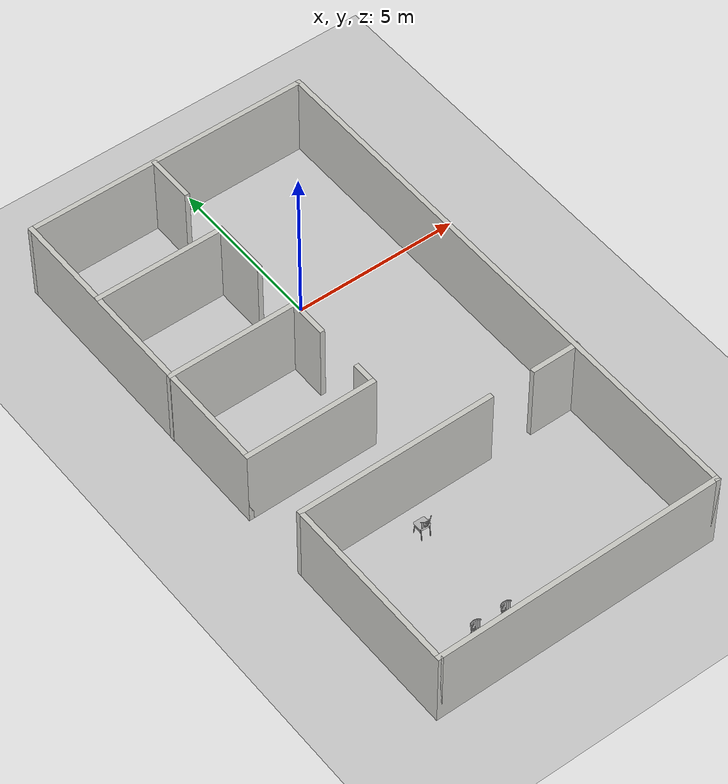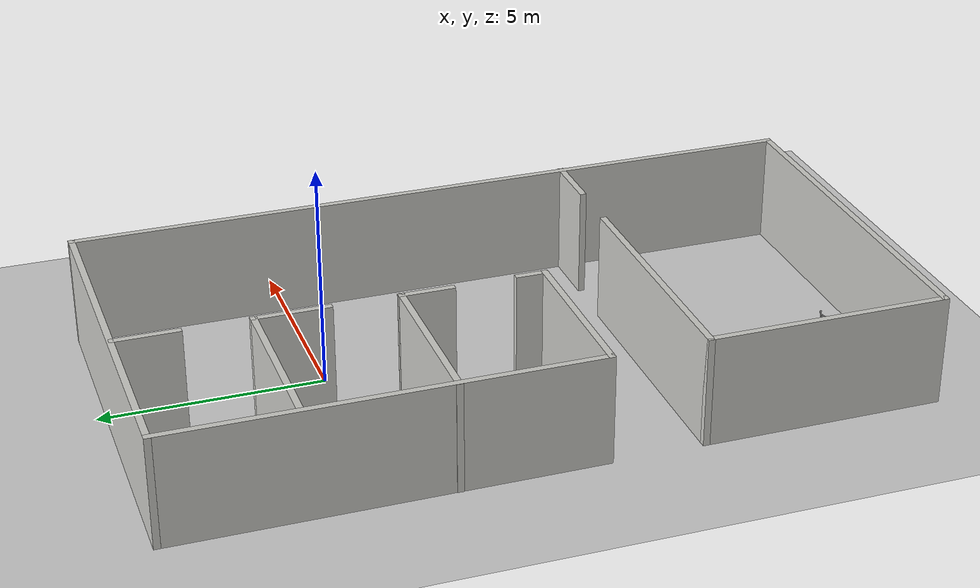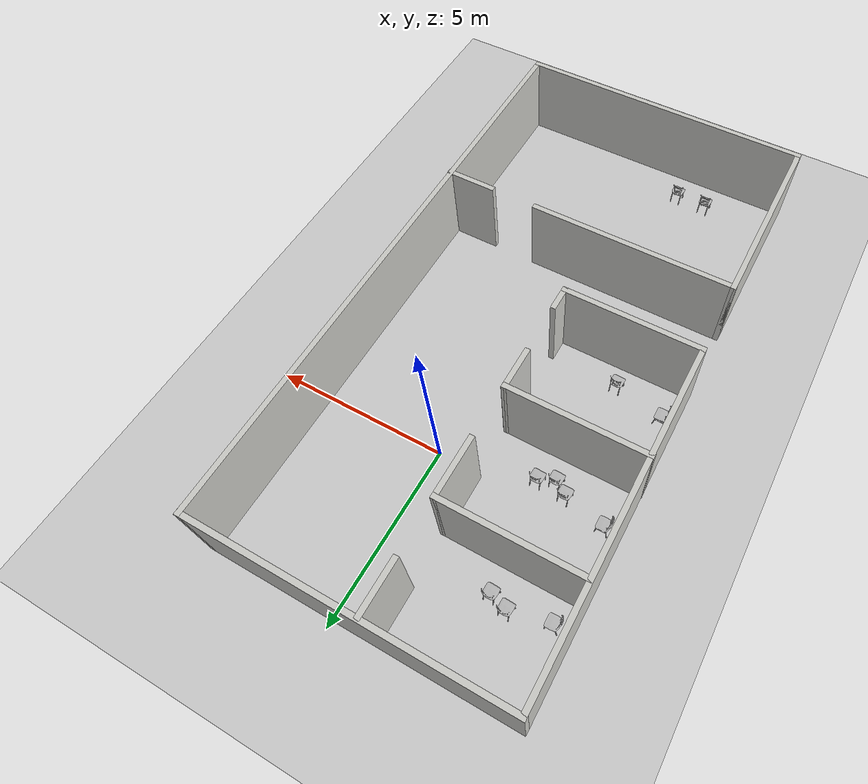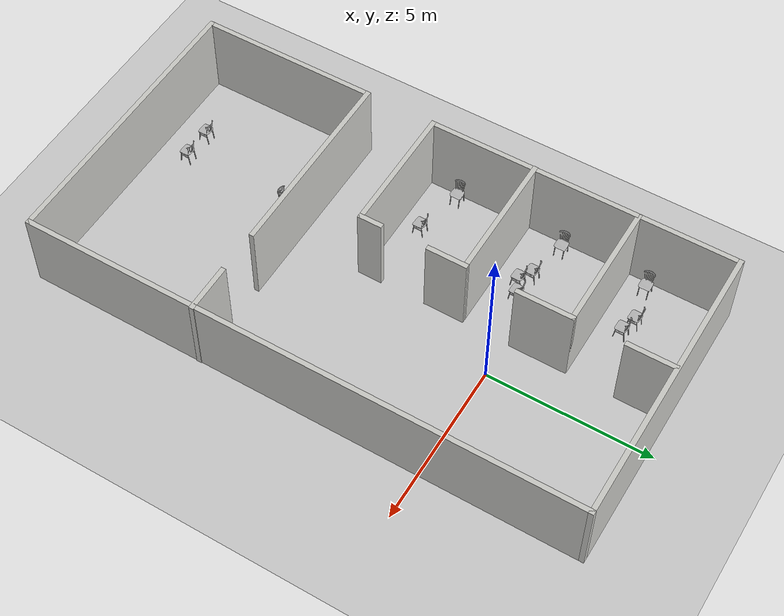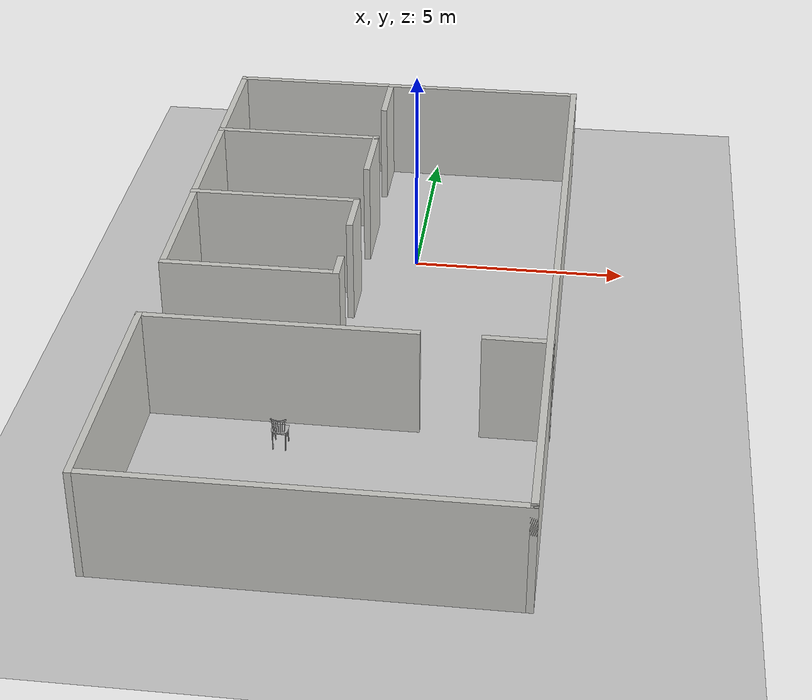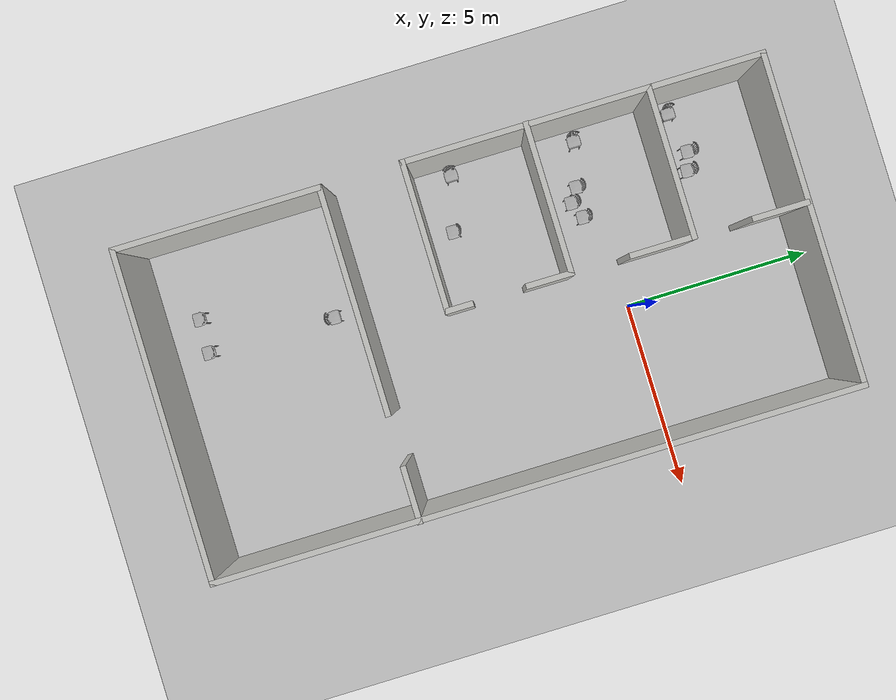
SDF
<sdf version="1.6">
 <world name="ingc_lab">
  <plugin name="ActorPosesPlugin" filename="libActorPosesPlugin.so"/>
  <light name="sun" type="directional">
   <pose>0 0 10 0 -0 0</pose>
   <diffuse>0.8 0.8 0.8 1</diffuse>
   <specular>0.2 0.2 0.2 1</specular>
   <attenuation>
    <range>1000</range>
    <constant>0.9</constant>
    <linear>0.01</linear>
    <quadratic>0.001</quadratic>
   </attenuation>
   <direction>-0.5 0.1 -0.9</direction>
  </light>
  <model name="ground_plane">
   <static>1</static>
   <link name="link">
    <collision name="collision">
     <geometry><plane><normal>0 0 1</normal><size>100 100</size></plane></geometry>
     <surface>
      <contact><collide_bitmask>65535</collide_bitmask></contact>
      <friction><ode><mu>100</mu><mu2>50</mu2></ode></friction>
     </surface>
    </collision>
    <visual name="visual">
     <cast_shadows>0</cast_shadows>
     <geometry><plane><normal>0 0 1</normal><size>100 100</size></plane></geometry>
     <material>
      <script><uri>file://media/materials/scripts/gazebo.material</uri><name>Gazebo/Grey</name></script>
     </material>
    </visual>
   </link>
  </model>
  <gravity>0 0 -9.8</gravity>
  <magnetic_field>6e-06 2.3e-05 -4.2e-05</magnetic_field>
  <atmosphere type="adiabatic"/>
  <physics name="default_physics" default="0" type="ode">
   <max_step_size>0.001</max_step_size>
   <real_time_factor>1</real_time_factor>
   <real_time_update_rate>1000</real_time_update_rate>
  </physics>
  <scene><ambient>0.4 0.4 0.4 1</ambient><background>0.7 0.7 0.7 1</background><shadows>1</shadows></scene>
  <audio><device>default</device></audio>
  <spherical_coordinates>
   <surface_model>EARTH_WGS84</surface_model>
   <latitude_deg>0</latitude_deg>
   <longitude_deg>0</longitude_deg>
   <elevation>0</elevation>
   <heading_deg>0</heading_deg>
  </spherical_coordinates>
  <model name="ignc_model_own-size">
   <pose>-0.772286 -3.71003 0 0 -0 0</pose>
   <link name="Wall_31">
    <collision name="Wall_31_Collision">
     <geometry><box><size>5.5 0.15 2.5</size></box></geometry>
     <pose>0 0 1.25 0 -0 0</pose>
    </collision>
    <visual name="Wall_31_Visual">
     <pose>0 0 1.25 0 -0 0</pose>
     <geometry><box><size>5.5 0.15 2.5</size></box></geometry>
     <material>
      <script><uri>file://media/materials/scripts/gazebo.material</uri><name>Gazebo/CeilingTiled</name></script>
      <ambient>1 1 1 1</ambient>
     </material>
     <meta><layer>0</layer></meta>
    </visual>
    <pose>-4.30343 -5.75 0 0 -0 -1.5708</pose>
   </link>
   <link name="Wall_32">
    <collision name="Wall_32_Collision">
     <geometry><box><size>8.75 0.15 2.5</size></box></geometry>
     <pose>0 0 1.25 0 -0 0</pose>
    </collision>
    <visual name="Wall_32_Visual">
     <pose>0 0 1.25 0 -0 0</pose>
     <geometry><box><size>8.75 0.15 2.5</size></box></geometry>
     <material>
      <script><uri>file://media/materials/scripts/gazebo.material</uri><name>Gazebo/CeilingTiled</name></script>
      <ambient>1 1 1 1</ambient>
     </material>
     <meta><layer>0</layer></meta>
    </visual>
    <pose>-0.00343 -8.425 0 0 -0 0</pose>
   </link>
   <link name="Wall_33">
    <collision name="Wall_33_Collision">
     <geometry><box><size>17 0.15 2.5</size></box></geometry>
     <pose>0 0 1.25 0 -0 0</pose>
    </collision>
    <visual name="Wall_33_Visual">
     <pose>0 0 1.25 0 -0 0</pose>
     <geometry><box><size>17 0.15 2.5</size></box></geometry>
     <material>
      <script><uri>file://media/materials/scripts/gazebo.material</uri><name>Gazebo/CeilingTiled</name></script>
      <ambient>1 1 1 1</ambient>
     </material>
     <meta><layer>0</layer></meta>
    </visual>
    <pose>4.29657 0 0 0 -0 1.5708</pose>
   </link>
   <link name="Wall_35">
    <collision name="Wall_35_Collision">
     <geometry><box><size>8.75 0.15 2.5</size></box></geometry>
     <pose>0 0 1.25 0 -0 0</pose>
    </collision>
    <visual name="Wall_35_Visual">
     <pose>0 0 1.25 0 -0 0</pose>
     <geometry><box><size>8.75 0.15 2.5</size></box></geometry>
     <material>
      <script><uri>file://media/materials/scripts/gazebo.material</uri><name>Gazebo/CeilingTiled</name></script>
      <ambient>1 1 1 1</ambient>
     </material>
     <meta><layer>0</layer></meta>
    </visual>
    <pose>-0.00343 8.425 0 0 -0 3.14159</pose>
   </link>
   <link name="Wall_36">
    <collision name="Wall_36_Collision">
     <geometry><box><size>9.5 0.15 2.5</size></box></geometry>
     <pose>0 0 1.25 0 -0 0</pose>
    </collision>
    <visual name="Wall_36_Visual">
     <pose>0 0 1.25 0 -0 0</pose>
     <geometry><box><size>9.5 0.15 2.5</size></box></geometry>
     <material>
      <script><uri>file://media/materials/scripts/gazebo.material</uri><name>Gazebo/CeilingTiled</name></script>
      <ambient>1 1 1 1</ambient>
     </material>
     <meta><layer>0</layer></meta>
    </visual>
    <pose>-4.30343 3.75 0 0 -0 -1.5708</pose>
   </link>
   <link name="Wall_37">
    <collision name="Wall_37_Collision">
     <geometry><box><size>4 0.15 2.5</size></box></geometry>
     <pose>0 0 1.25 0 -0 0</pose>
    </collision>
    <visual name="Wall_37_Visual">
     <pose>0 0 1.25 0 -0 0</pose>
     <geometry><box><size>4 0.15 2.5</size></box></geometry>
     <material>
      <script><uri>file://media/materials/scripts/gazebo.material</uri><name>Gazebo/CeilingTiled</name></script>
      <ambient>1 1 1 1</ambient>
     </material>
     <meta><layer>0</layer></meta>
    </visual>
    <pose>-2.37843 -0.925 0 0 -0 0</pose>
   </link>
   <link name="Wall_38">
    <collision name="Wall_38_Collision">
     <geometry><box><size>0.75 0.15 2.5</size></box></geometry>
     <pose>0 0 1.25 0 -0 0</pose>
    </collision>
    <visual name="Wall_38_Visual">
     <pose>0 0 1.25 0 -0 0</pose>
     <geometry><box><size>0.75 0.15 2.5</size></box></geometry>
     <material>
      <script><uri>file://media/materials/scripts/gazebo.material</uri><name>Gazebo/CeilingTiled</name></script>
      <ambient>1 1 1 1</ambient>
     </material>
     <meta><layer>0</layer></meta>
    </visual>
    <pose>-0.45343 -0.625 0 0 -0 1.5708</pose>
   </link>
   <link name="Wall_40">
    <collision name="Wall_40_Collision">
     <geometry><box><size>4 0.15 2.5</size></box></geometry>
     <pose>0 0 1.25 0 -0 0</pose>
    </collision>
    <visual name="Wall_40_Visual">
     <pose>0 0 1.25 0 -0 0</pose>
     <geometry><box><size>4 0.15 2.5</size></box></geometry>
     <material>
      <script><uri>file://media/materials/scripts/gazebo.material</uri><name>Gazebo/CeilingTiled</name></script>
      <ambient>1 1 1 1</ambient>
     </material>
     <meta><layer>0</layer></meta>
    </visual>
    <pose>-2.38986 2.2841 0 0 -0 0</pose>
   </link>
   <link name="Wall_41">
    <collision name="Wall_41_Collision">
     <geometry><box><size>1.25 0.15 2.5</size></box></geometry>
     <pose>0 0 1.25 0 -0 0</pose>
    </collision>
    <visual name="Wall_41_Visual">
     <pose>0 0 1.25 0 -0 0</pose>
     <geometry><box><size>1.25 0.15 2.5</size></box></geometry>
     <material>
      <script><uri>file://media/materials/scripts/gazebo.material</uri><name>Gazebo/CeilingTiled</name></script>
      <ambient>1 1 1 1</ambient>
     </material>
     <meta><layer>0</layer></meta>
    </visual>
    <pose>-0.464859 1.7341 0 0 -0 -1.57418</pose>
   </link>
   <link name="Wall_43">
    <collision name="Wall_43_Collision">
     <geometry><box><size>4 0.15 2.5</size></box></geometry>
     <pose>0 0 1.25 0 -0 0</pose>
    </collision>
    <visual name="Wall_43_Visual">
     <pose>0 0 1.25 0 -0 0</pose>
     <geometry><box><size>4 0.15 2.5</size></box></geometry>
     <material>
      <script><uri>file://media/materials/scripts/gazebo.material</uri><name>Gazebo/CeilingTiled</name></script>
      <ambient>1 1 1 1</ambient>
     </material>
     <meta><layer>0</layer></meta>
    </visual>
    <pose>-2.36872 5.4581 0 0 -0 0</pose>
   </link>
   <link name="Wall_44">
    <collision name="Wall_44_Collision">
     <geometry><box><size>1.75 0.15 2.5</size></box></geometry>
     <pose>0 0 1.25 0 -0 0</pose>
    </collision>
    <visual name="Wall_44_Visual">
     <pose>0 0 1.25 0 -0 0</pose>
     <geometry><box><size>1.75 0.15 2.5</size></box></geometry>
     <material>
      <script><uri>file://media/materials/scripts/gazebo.material</uri><name>Gazebo/CeilingTiled</name></script>
      <ambient>1 1 1 1</ambient>
     </material>
     <meta><layer>0</layer></meta>
    </visual>
    <pose>-0.443718 4.6581 0 0 -0 -1.5708</pose>
   </link>
   <link name="Wall_47">
    <collision name="Wall_47_Collision">
     <geometry><box><size>1.5 0.15 2.5</size></box></geometry>
     <pose>0 0 1.25 0 -0 0</pose>
    </collision>
    <visual name="Wall_47_Visual">
     <pose>0 0 1.25 0 -0 0</pose>
     <geometry><box><size>1.5 0.15 2.5</size></box></geometry>
     <material>
      <script><uri>file://media/materials/scripts/gazebo.material</uri><name>Gazebo/CeilingTiled</name></script>
      <ambient>1 1 1 1</ambient>
     </material>
     <meta><layer>0</layer></meta>
    </visual>
    <pose>-0.438846 7.70388 0 0 -0 -1.5708</pose>
   </link>
   <link name="Wall_49">
    <collision name="Wall_49_Collision">
     <geometry><box><size>6 0.15 2.5</size></box></geometry>
     <pose>0 0 1.25 0 -0 0</pose>
    </collision>
    <visual name="Wall_49_Visual">
     <pose>0 0 1.25 0 -0 0</pose>
     <geometry><box><size>6 0.15 2.5</size></box></geometry>
     <material>
      <script><uri>file://media/materials/scripts/gazebo.material</uri><name>Gazebo/CeilingTiled</name></script>
      <ambient>1 1 1 1</ambient>
     </material>
     <meta><layer>0</layer></meta>
    </visual>
    <pose>-1.37843 -3.075 0 0 -0 0</pose>
   </link>
   <link name="Wall_51">
    <collision name="Wall_51_Collision">
     <geometry><box><size>1.5 0.15 2.5</size></box></geometry>
     <pose>0 0 1.25 0 -0 0</pose>
    </collision>
    <visual name="Wall_51_Visual">
     <pose>0 0 1.25 0 -0 0</pose>
     <geometry><box><size>1.5 0.15 2.5</size></box></geometry>
     <material>
      <script><uri>file://media/materials/scripts/gazebo.material</uri><name>Gazebo/CeilingTiled</name></script>
      <ambient>1 1 1 1</ambient>
     </material>
     <meta><layer>0</layer></meta>
    </visual>
    <pose>3.63986 -3.09099 0 0 -0 3.14159</pose>
   </link>
   <static>1</static>
  </model>
  <model name="WoodenChair">
   <static>1</static>
   <link name="body">
    <visual name="visual">
     <geometry><mesh><uri>model://WoodenChair/meshes/WoodenChair.obj</uri></mesh></geometry>
    </visual>
    <collision name="collision">
     <geometry><mesh><uri>model://WoodenChair/meshes/WoodenChair_Col.obj</uri></mesh></geometry>
    </collision>
   </link>
   <pose>-3.26009 -3.93931 0 0 0 -1.60408</pose>
  </model>
  <model name="WoodenChair_clone">
   <static>1</static>
   <link name="body">
    <visual name="visual">
     <geometry><mesh><uri>model://WoodenChair/meshes/WoodenChair.obj</uri></mesh></geometry>
    </visual>
    <collision name="collision">
     <geometry><mesh><uri>model://WoodenChair/meshes/WoodenChair_Col.obj</uri></mesh></geometry>
    </collision>
   </link>
   <pose>-3.08433 -0.687107 0 0 0 -1.60408</pose>
  </model>
  <model name="WoodenChair_clone_0">
   <static>1</static>
   <link name="body">
    <visual name="visual">
     <geometry><mesh><uri>model://WoodenChair/meshes/WoodenChair.obj</uri></mesh></geometry>
    </visual>
    <collision name="collision">
     <geometry><mesh><uri>model://WoodenChair/meshes/WoodenChair_Col.obj</uri></mesh></geometry>
    </collision>
   </link>
   <pose>-3.01334 2.53305 0 0 0 -1.60408</pose>
  </model>
  <model name="WoodenChair_clone_1">
   <static>1</static>
   <link name="body">
    <visual name="visual">
     <geometry><mesh><uri>model://WoodenChair/meshes/WoodenChair.obj</uri></mesh></geometry>
    </visual>
    <collision name="collision">
     <geometry><mesh><uri>model://WoodenChair/meshes/WoodenChair_Col.obj</uri></mesh></geometry>
    </collision>
   </link>
   <pose>-2.06468 -11.1223 0 0 0 -1.60408</pose>
  </model>
  <model name="WoodenChair_clone_2">
   <static>1</static>
   <link name="body">
    <visual name="visual">
     <geometry><mesh><uri>model://WoodenChair/meshes/WoodenChair.obj</uri></mesh></geometry>
    </visual>
    <collision name="collision">
     <geometry><mesh><uri>model://WoodenChair/meshes/WoodenChair_Col.obj</uri></mesh></geometry>
    </collision>
   </link>
   <pose>-2.9903 -11.1067 0 0 0 -1.60408</pose>
  </model>
  <model name="WoodenChair_clone_3">
   <static>1</static>
   <link name="body">
    <visual name="visual">
     <geometry><mesh><uri>model://WoodenChair/meshes/WoodenChair.obj</uri></mesh></geometry>
    </visual>
    <collision name="collision">
     <geometry><mesh><uri>model://WoodenChair/meshes/WoodenChair_Col.obj</uri></mesh></geometry>
    </collision>
   </link>
   <pose>-2.63254 -0.50386 0 0 0 -1.60408</pose>
  </model>
  <model name="WoodenChair_clone_4">
   <static>1</static>
   <link name="body">
    <visual name="visual">
     <geometry><mesh><uri>model://WoodenChair/meshes/WoodenChair.obj</uri></mesh></geometry>
    </visual>
    <collision name="collision">
     <geometry><mesh><uri>model://WoodenChair/meshes/WoodenChair_Col.obj</uri></mesh></geometry>
    </collision>
   </link>
   <pose>-3.44775 -0.443577 0 0 0 -1.60408</pose>
  </model>
  <model name="WoodenChair_clone_5">
   <static>1</static>
   <link name="body">
    <visual name="visual">
     <geometry><mesh><uri>model://WoodenChair/meshes/WoodenChair.obj</uri></mesh></geometry>
    </visual>
    <collision name="collision">
     <geometry><mesh><uri>model://WoodenChair/meshes/WoodenChair_Col.obj</uri></mesh></geometry>
    </collision>
   </link>
   <pose>-3.50224 2.68768 0 0 0 -1.60408</pose>
  </model>
  <model name="WoodenChair_clone_6">
   <static>1</static>
   <link name="body">
    <visual name="visual">
     <geometry><mesh><uri>model://WoodenChair/meshes/WoodenChair.obj</uri></mesh></geometry>
    </visual>
    <collision name="collision">
     <geometry><mesh><uri>model://WoodenChair/meshes/WoodenChair_Col.obj</uri></mesh></geometry>
    </collision>
   </link>
   <pose>-4.61671 2.47001 0 0 -0 0.003264</pose>
  </model>
  <model name="WoodenChair_clone_6_clone">
   <static>1</static>
   <link name="body">
    <visual name="visual">
     <geometry><mesh><uri>model://WoodenChair/meshes/WoodenChair.obj</uri></mesh></geometry>
    </visual>
    <collision name="collision">
     <geometry><mesh><uri>model://WoodenChair/meshes/WoodenChair_Col.obj</uri></mesh></geometry>
    </collision>
   </link>
   <pose>-4.64197 -0.158683 0 0 -0 0.003264</pose>
  </model>
  <model name="WoodenChair_clone_6_clone_0">
   <static>1</static>
   <link name="body">
    <visual name="visual">
     <geometry><mesh><uri>model://WoodenChair/meshes/WoodenChair.obj</uri></mesh></geometry>
    </visual>
    <collision name="collision">
     <geometry><mesh><uri>model://WoodenChair/meshes/WoodenChair_Col.obj</uri></mesh></geometry>
    </collision>
   </link>
   <pose>-4.7256 -3.56547 0 0 -0 0.003264</pose>
  </model>
  <model name="WoodenChair_clone_6_clone_1">
   <static>1</static>
   <link name="body">
    <visual name="visual">
     <geometry><mesh><uri>model://WoodenChair/meshes/WoodenChair.obj</uri></mesh></geometry>
    </visual>
    <collision name="collision">
     <geometry><mesh><uri>model://WoodenChair/meshes/WoodenChair_Col.obj</uri></mesh></geometry>
    </collision>
   </link>
   <pose>-1.99688 -7.65151 0 0 -0 1.55857</pose>
  </model>
  <model name="ARENA_GEN_person_1_collision_model">
   <pose>0 0 -100 0 0 0</pose>
   <static>true</static>
   <link name="link">
    <collision name="link">
     <pose>0 -0.18 0.05 0 -1.5707963267948966 0</pose>
     <geometry><box><size>0.44 1.62 0.60</size></box></geometry>
    </collision>
   </link>
  </model>
  <model name="ARENA_GEN_person_2_collision_model">
   <pose>0 0 -100 0 0 0</pose>
   <static>true</static>
   <link name="link">
    <collision name="link">
     <pose>0 -0.18 0.05 0 -1.5707963267948966 0</pose>
     <geometry><box><size>0.44 1.62 0.60</size></box></geometry>
    </collision>
   </link>
  </model>
  <model name="ARENA_GEN_person_3_collision_model">
   <pose>0 0 -100 0 0 0</pose>
   <static>true</static>
   <link name="link">
    <collision name="link">
     <pose>0 -0.18 0.05 0 -1.5707963267948966 0</pose>
     <geometry><box><size>0.44 1.62 0.60</size></box></geometry>
    </collision>
   </link>
  </model>
 </world>
</sdf>
